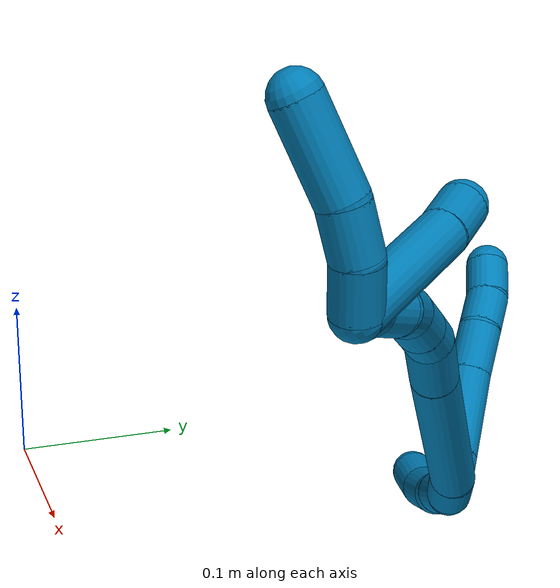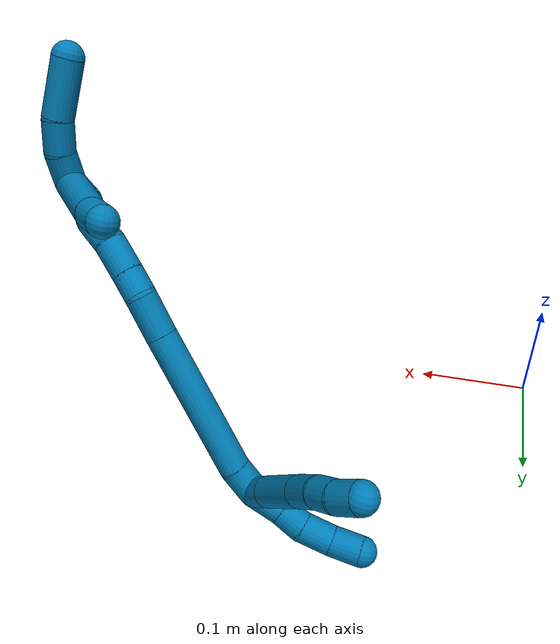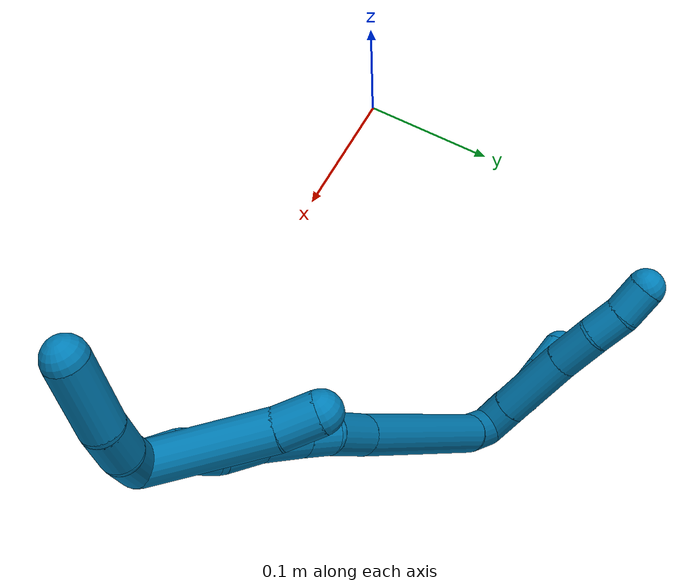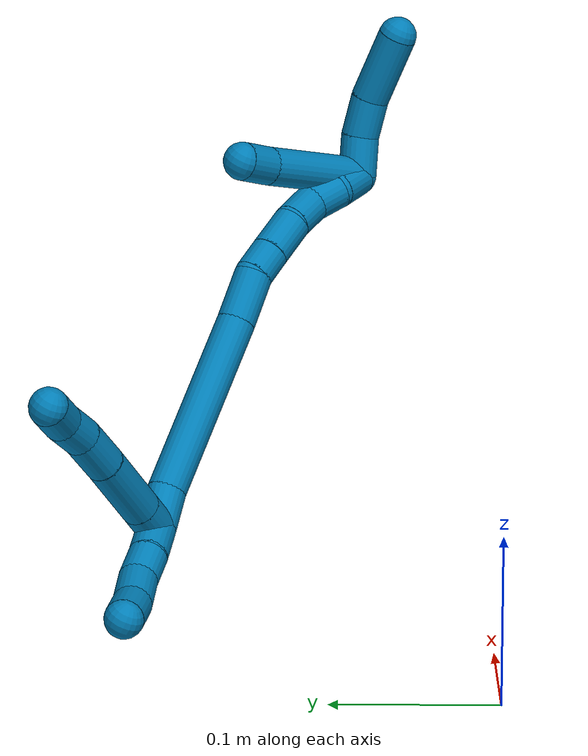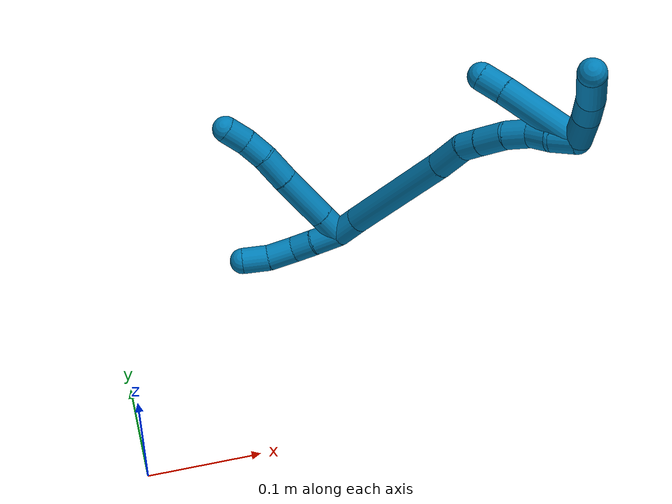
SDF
<sdf version="1.7">
 <world name="default">
  <model name="9">
   <static>0</static>
   <link name="9">
    <collision name="collision-cylinder-e_1_2_8">
     <pose>0.008328 0.005244 0.006988 -0.643769 0.76151 -0.265409</pose>
     <geometry><cylinder><radius>0.0125</radius><length>0.02414</length></cylinder></geometry>
     <surface>
      <friction><ode><mu>1.16</mu><mu2>1.16</mu2><slip1>0</slip1><slip2>0</slip2></ode></friction>
      <contact><ode><kp>1e+06</kp><kd>1</kd><max_vel>0</max_vel><min_depth>0.001</min_depth></ode></contact>
     </surface>
    </collision>
    <visual name="visual-cylinder-e_1_2_8">
     <pose>0.008328 0.005244 0.006988 -0.643769 0.76151 -0.265409</pose>
     <geometry><cylinder><radius>0.0125</radius><length>0.02414</length></cylinder></geometry>
     <material><ambient>0 0.490196 0.709804 1</ambient></material>
    </visual>
    <collision name="collision-cylinder-e_2_8_9">
     <pose>0.034337 0.021526 0.028689 -0.643632 0.76559 -0.266901</pose>
     <geometry><cylinder><radius>0.0125</radius><length>0.051027</length></cylinder></geometry>
     <surface>
      <friction><ode><mu>1.16</mu><mu2>1.16</mu2><slip1>0</slip1><slip2>0</slip2></ode></friction>
      <contact><ode><kp>1e+06</kp><kd>1</kd><max_vel>0</max_vel><min_depth>0.001</min_depth></ode></contact>
     </surface>
    </collision>
    <visual name="visual-cylinder-e_2_8_9">
     <pose>0.034337 0.021526 0.028689 -0.643632 0.76559 -0.266901</pose>
     <geometry><cylinder><radius>0.0125</radius><length>0.051027</length></cylinder></geometry>
     <material><ambient>0 0.490196 0.709804 1</ambient></material>
    </visual>
    <collision name="collision-cylinder-e_3_9_10">
     <pose>0.062795 0.038474 0.051624 -0.623279 0.81666 -0.276959</pose>
     <geometry><cylinder><radius>0.0125</radius><length>0.029576</length></cylinder></geometry>
     <surface>
      <friction><ode><mu>1.16</mu><mu2>1.16</mu2><slip1>0</slip1><slip2>0</slip2></ode></friction>
      <contact><ode><kp>1e+06</kp><kd>1</kd><max_vel>0</max_vel><min_depth>0.001</min_depth></ode></contact>
     </surface>
    </collision>
    <visual name="visual-cylinder-e_3_9_10">
     <pose>0.062795 0.038474 0.051624 -0.623279 0.81666 -0.276959</pose>
     <geometry><cylinder><radius>0.0125</radius><length>0.029576</length></cylinder></geometry>
     <material><ambient>0 0.490196 0.709804 1</ambient></material>
    </visual>
    <collision name="collision-cylinder-e_4_10_11">
     <pose>0.081682 0.050299 0.064866 -0.866982 0.807486 -0.390436</pose>
     <geometry><cylinder><radius>0.0125</radius><length>0.022445</length></cylinder></geometry>
     <surface>
      <friction><ode><mu>1.16</mu><mu2>1.16</mu2><slip1>0</slip1><slip2>0</slip2></ode></friction>
      <contact><ode><kp>1e+06</kp><kd>1</kd><max_vel>0</max_vel><min_depth>0.001</min_depth></ode></contact>
     </surface>
    </collision>
    <visual name="visual-cylinder-e_4_10_11">
     <pose>0.081682 0.050299 0.064866 -0.866982 0.807486 -0.390436</pose>
     <geometry><cylinder><radius>0.0125</radius><length>0.022445</length></cylinder></geometry>
     <material><ambient>0 0.490196 0.709804 1</ambient></material>
    </visual>
    <collision name="collision-cylinder-e_5_11_6">
     <pose>0.096287 0.063298 0.076028 -0.856538 0.605865 -0.283464</pose>
     <geometry><cylinder><radius>0.0125</radius><length>0.022812</length></cylinder></geometry>
     <surface>
      <friction><ode><mu>1.16</mu><mu2>1.16</mu2><slip1>0</slip1><slip2>0</slip2></ode></friction>
      <contact><ode><kp>1e+06</kp><kd>1</kd><max_vel>0</max_vel><min_depth>0.001</min_depth></ode></contact>
     </surface>
    </collision>
    <visual name="visual-cylinder-e_5_11_6">
     <pose>0.096287 0.063298 0.076028 -0.856538 0.605865 -0.283464</pose>
     <geometry><cylinder><radius>0.0125</radius><length>0.022812</length></cylinder></geometry>
     <material><ambient>0 0.490196 0.709804 1</ambient></material>
    </visual>
    <collision name="collision-cylinder-e_1_2_12">
     <pose>0.000801 0.012401 -0.003761 -1.86526 0.061738 -0.083217</pose>
     <geometry><cylinder><radius>0.0125</radius><length>0.025966</length></cylinder></geometry>
     <surface>
      <friction><ode><mu>1.16</mu><mu2>1.16</mu2><slip1>0</slip1><slip2>0</slip2></ode></friction>
      <contact><ode><kp>1e+06</kp><kd>1</kd><max_vel>0</max_vel><min_depth>0.001</min_depth></ode></contact>
     </surface>
    </collision>
    <visual name="visual-cylinder-e_1_2_12">
     <pose>0.000801 0.012401 -0.003761 -1.86526 0.061738 -0.083217</pose>
     <geometry><cylinder><radius>0.0125</radius><length>0.025966</length></cylinder></geometry>
     <material><ambient>0 0.490196 0.709804 1</ambient></material>
    </visual>
    <collision name="collision-cylinder-e_2_12_13">
     <pose>0.00284 0.034675 -0.011713 -1.97219 0.114934 -0.173396</pose>
     <geometry><cylinder><radius>0.0125</radius><length>0.021595</length></cylinder></geometry>
     <surface>
      <friction><ode><mu>1.16</mu><mu2>1.16</mu2><slip1>0</slip1><slip2>0</slip2></ode></friction>
      <contact><ode><kp>1e+06</kp><kd>1</kd><max_vel>0</max_vel><min_depth>0.001</min_depth></ode></contact>
     </surface>
    </collision>
    <visual name="visual-cylinder-e_2_12_13">
     <pose>0.00284 0.034675 -0.011713 -1.97219 0.114934 -0.173396</pose>
     <geometry><cylinder><radius>0.0125</radius><length>0.021595</length></cylinder></geometry>
     <material><ambient>0 0.490196 0.709804 1</ambient></material>
    </visual>
    <collision name="collision-cylinder-e_3_13_14">
     <pose>0.004695 0.057817 -0.017812 -1.71366 0.045926 -0.053002</pose>
     <geometry><cylinder><radius>0.0125</radius><length>0.026837</length></cylinder></geometry>
     <surface>
      <friction><ode><mu>1.16</mu><mu2>1.16</mu2><slip1>0</slip1><slip2>0</slip2></ode></friction>
      <contact><ode><kp>1e+06</kp><kd>1</kd><max_vel>0</max_vel><min_depth>0.001</min_depth></ode></contact>
     </surface>
    </collision>
    <visual name="visual-cylinder-e_3_13_14">
     <pose>0.004695 0.057817 -0.017812 -1.71366 0.045926 -0.053002</pose>
     <geometry><cylinder><radius>0.0125</radius><length>0.026837</length></cylinder></geometry>
     <material><ambient>0 0.490196 0.709804 1</ambient></material>
    </visual>
    <collision name="collision-cylinder-e_4_14_5">
     <pose>0.007726 0.083637 -0.019031 -1.51589 0.189792 -0.179703</pose>
     <geometry><cylinder><radius>0.0125</radius><length>0.025601</length></cylinder></geometry>
     <surface>
      <friction><ode><mu>1.16</mu><mu2>1.16</mu2><slip1>0</slip1><slip2>0</slip2></ode></friction>
      <contact><ode><kp>1e+06</kp><kd>1</kd><max_vel>0</max_vel><min_depth>0.001</min_depth></ode></contact>
     </surface>
    </collision>
    <visual name="visual-cylinder-e_4_14_5">
     <pose>0.007726 0.083637 -0.019031 -1.51589 0.189792 -0.179703</pose>
     <geometry><cylinder><radius>0.0125</radius><length>0.025601</length></cylinder></geometry>
     <material><ambient>0 0.490196 0.709804 1</ambient></material>
    </visual>
    <collision name="collision-cylinder-e_1_2_15">
     <pose>0.000486 -0.010351 0.008369 0.890881 0.036476 0.017417</pose>
     <geometry><cylinder><radius>0.0125</radius><length>0.02664</length></cylinder></geometry>
     <surface>
      <friction><ode><mu>1.16</mu><mu2>1.16</mu2><slip1>0</slip1><slip2>0</slip2></ode></friction>
      <contact><ode><kp>1e+06</kp><kd>1</kd><max_vel>0</max_vel><min_depth>0.001</min_depth></ode></contact>
     </surface>
    </collision>
    <visual name="visual-cylinder-e_1_2_15">
     <pose>0.000486 -0.010351 0.008369 0.890881 0.036476 0.017417</pose>
     <geometry><cylinder><radius>0.0125</radius><length>0.02664</length></cylinder></geometry>
     <material><ambient>0 0.490196 0.709804 1</ambient></material>
    </visual>
    <collision name="collision-cylinder-e_2_15_16">
     <pose>-0.002511 -0.062078 0.061531 0.745772 -0.057051 -0.022323</pose>
     <geometry><cylinder><radius>0.0125</radius><length>0.122156</length></cylinder></geometry>
     <surface>
      <friction><ode><mu>1.16</mu><mu2>1.16</mu2><slip1>0</slip1><slip2>0</slip2></ode></friction>
      <contact><ode><kp>1e+06</kp><kd>1</kd><max_vel>0</max_vel><min_depth>0.001</min_depth></ode></contact>
     </surface>
    </collision>
    <visual name="visual-cylinder-e_2_15_16">
     <pose>-0.002511 -0.062078 0.061531 0.745772 -0.057051 -0.022323</pose>
     <geometry><cylinder><radius>0.0125</radius><length>0.122156</length></cylinder></geometry>
     <material><ambient>0 0.490196 0.709804 1</ambient></material>
    </visual>
    <collision name="collision-cylinder-e_3_16_17">
     <pose>-0.006278 -0.114627 0.119425 0.706072 -0.016517 -0.006086</pose>
     <geometry><cylinder><radius>0.0125</radius><length>0.034441</length></cylinder></geometry>
     <surface>
      <friction><ode><mu>1.16</mu><mu2>1.16</mu2><slip1>0</slip1><slip2>0</slip2></ode></friction>
      <contact><ode><kp>1e+06</kp><kd>1</kd><max_vel>0</max_vel><min_depth>0.001</min_depth></ode></contact>
     </surface>
    </collision>
    <visual name="visual-cylinder-e_3_16_17">
     <pose>-0.006278 -0.114627 0.119425 0.706072 -0.016517 -0.006086</pose>
     <geometry><cylinder><radius>0.0125</radius><length>0.034441</length></cylinder></geometry>
     <material><ambient>0 0.490196 0.709804 1</ambient></material>
    </visual>
    <collision name="collision-cylinder-e_4_17_18">
     <pose>-0.009375 -0.13314 0.138952 0.851809 -0.280631 -0.127982</pose>
     <geometry><cylinder><radius>0.0125</radius><length>0.020306</length></cylinder></geometry>
     <surface>
      <friction><ode><mu>1.16</mu><mu2>1.16</mu2><slip1>0</slip1><slip2>0</slip2></ode></friction>
      <contact><ode><kp>1e+06</kp><kd>1</kd><max_vel>0</max_vel><min_depth>0.001</min_depth></ode></contact>
     </surface>
    </collision>
    <visual name="visual-cylinder-e_4_17_18">
     <pose>-0.009375 -0.13314 0.138952 0.851809 -0.280631 -0.127982</pose>
     <geometry><cylinder><radius>0.0125</radius><length>0.020306</length></cylinder></geometry>
     <material><ambient>0 0.490196 0.709804 1</ambient></material>
    </visual>
    <collision name="collision-cylinder-e_5_18_19">
     <pose>-0.016203 -0.150792 0.153951 0.877184 -0.291013 -0.137259</pose>
     <geometry><cylinder><radius>0.0125</radius><length>0.027997</length></cylinder></geometry>
     <surface>
      <friction><ode><mu>1.16</mu><mu2>1.16</mu2><slip1>0</slip1><slip2>0</slip2></ode></friction>
      <contact><ode><kp>1e+06</kp><kd>1</kd><max_vel>0</max_vel><min_depth>0.001</min_depth></ode></contact>
     </surface>
    </collision>
    <visual name="visual-cylinder-e_5_18_19">
     <pose>-0.016203 -0.150792 0.153951 0.877184 -0.291013 -0.137259</pose>
     <geometry><cylinder><radius>0.0125</radius><length>0.027997</length></cylinder></geometry>
     <material><ambient>0 0.490196 0.709804 1</ambient></material>
    </visual>
    <collision name="collision-cylinder-e_6_19_20">
     <pose>-0.024971 -0.17084 0.167597 1.09042 -0.408418 -0.249913</pose>
     <geometry><cylinder><radius>0.0125</radius><length>0.023925</length></cylinder></geometry>
     <surface>
      <friction><ode><mu>1.16</mu><mu2>1.16</mu2><slip1>0</slip1><slip2>0</slip2></ode></friction>
      <contact><ode><kp>1e+06</kp><kd>1</kd><max_vel>0</max_vel><min_depth>0.001</min_depth></ode></contact>
     </surface>
    </collision>
    <visual name="visual-cylinder-e_6_19_20">
     <pose>-0.024971 -0.17084 0.167597 1.09042 -0.408418 -0.249913</pose>
     <geometry><cylinder><radius>0.0125</radius><length>0.023925</length></cylinder></geometry>
     <material><ambient>0 0.490196 0.709804 1</ambient></material>
    </visual>
    <collision name="collision-cylinder-e_7_20_21">
     <pose>-0.036455 -0.186924 0.178181 0.855886 -0.67532 -0.317606</pose>
     <geometry><cylinder><radius>0.0125</radius><length>0.02154</length></cylinder></geometry>
     <surface>
      <friction><ode><mu>1.16</mu><mu2>1.16</mu2><slip1>0</slip1><slip2>0</slip2></ode></friction>
      <contact><ode><kp>1e+06</kp><kd>1</kd><max_vel>0</max_vel><min_depth>0.001</min_depth></ode></contact>
     </surface>
    </collision>
    <visual name="visual-cylinder-e_7_20_21">
     <pose>-0.036455 -0.186924 0.178181 0.855886 -0.67532 -0.317606</pose>
     <geometry><cylinder><radius>0.0125</radius><length>0.02154</length></cylinder></geometry>
     <material><ambient>0 0.490196 0.709804 1</ambient></material>
    </visual>
    <collision name="collision-cylinder-e_8_21_1">
     <pose>-0.048974 -0.202566 0.187202 1.20975 -0.527359 -0.369018</pose>
     <geometry><cylinder><radius>0.0125</radius><length>0.022995</length></cylinder></geometry>
     <surface>
      <friction><ode><mu>1.16</mu><mu2>1.16</mu2><slip1>0</slip1><slip2>0</slip2></ode></friction>
      <contact><ode><kp>1e+06</kp><kd>1</kd><max_vel>0</max_vel><min_depth>0.001</min_depth></ode></contact>
     </surface>
    </collision>
    <visual name="visual-cylinder-e_8_21_1">
     <pose>-0.048974 -0.202566 0.187202 1.20975 -0.527359 -0.369018</pose>
     <geometry><cylinder><radius>0.0125</radius><length>0.022995</length></cylinder></geometry>
     <material><ambient>0 0.490196 0.709804 1</ambient></material>
    </visual>
    <collision name="collision-cylinder-e_1_1_22">
     <pose>-0.050549 -0.216672 0.202479 0.388099 0.31984 0.063376</pose>
     <geometry><cylinder><radius>0.0125</radius><length>0.026785</length></cylinder></geometry>
     <surface>
      <friction><ode><mu>1.16</mu><mu2>1.16</mu2><slip1>0</slip1><slip2>0</slip2></ode></friction>
      <contact><ode><kp>1e+06</kp><kd>1</kd><max_vel>0</max_vel><min_depth>0.001</min_depth></ode></contact>
     </surface>
    </collision>
    <visual name="visual-cylinder-e_1_1_22">
     <pose>-0.050549 -0.216672 0.202479 0.388099 0.31984 0.063376</pose>
     <geometry><cylinder><radius>0.0125</radius><length>0.026785</length></cylinder></geometry>
     <material><ambient>0 0.490196 0.709804 1</ambient></material>
    </visual>
    <collision name="collision-cylinder-e_2_22_23">
     <pose>-0.044171 -0.223664 0.227014 0.169132 0.165816 0.014088</pose>
     <geometry><cylinder><radius>0.0125</radius><length>0.026264</length></cylinder></geometry>
     <surface>
      <friction><ode><mu>1.16</mu><mu2>1.16</mu2><slip1>0</slip1><slip2>0</slip2></ode></friction>
      <contact><ode><kp>1e+06</kp><kd>1</kd><max_vel>0</max_vel><min_depth>0.001</min_depth></ode></contact>
     </surface>
    </collision>
    <visual name="visual-cylinder-e_2_22_23">
     <pose>-0.044171 -0.223664 0.227014 0.169132 0.165816 0.014088</pose>
     <geometry><cylinder><radius>0.0125</radius><length>0.026264</length></cylinder></geometry>
     <material><ambient>0 0.490196 0.709804 1</ambient></material>
    </visual>
    <collision name="collision-cylinder-e_3_23_4">
     <pose>-0.041144 -0.225375 0.263236 -0.019971 0.036592 -0.000365</pose>
     <geometry><cylinder><radius>0.0125</radius><length>0.046951</length></cylinder></geometry>
     <surface>
      <friction><ode><mu>1.16</mu><mu2>1.16</mu2><slip1>0</slip1><slip2>0</slip2></ode></friction>
      <contact><ode><kp>1e+06</kp><kd>1</kd><max_vel>0</max_vel><min_depth>0.001</min_depth></ode></contact>
     </surface>
    </collision>
    <visual name="visual-cylinder-e_3_23_4">
     <pose>-0.041144 -0.225375 0.263236 -0.019971 0.036592 -0.000365</pose>
     <geometry><cylinder><radius>0.0125</radius><length>0.046951</length></cylinder></geometry>
     <material><ambient>0 0.490196 0.709804 1</ambient></material>
    </visual>
    <collision name="collision-cylinder-e_1_1_24">
     <pose>-0.023132 -0.19077 0.189904 -1.60905 0.982318 -1.01448</pose>
     <geometry><cylinder><radius>0.0125</radius><length>0.076048</length></cylinder></geometry>
     <surface>
      <friction><ode><mu>1.16</mu><mu2>1.16</mu2><slip1>0</slip1><slip2>0</slip2></ode></friction>
      <contact><ode><kp>1e+06</kp><kd>1</kd><max_vel>0</max_vel><min_depth>0.001</min_depth></ode></contact>
     </surface>
    </collision>
    <visual name="visual-cylinder-e_1_1_24">
     <pose>-0.023132 -0.19077 0.189904 -1.60905 0.982318 -1.01448</pose>
     <geometry><cylinder><radius>0.0125</radius><length>0.076048</length></cylinder></geometry>
     <material><ambient>0 0.490196 0.709804 1</ambient></material>
    </visual>
    <collision name="collision-cylinder-e_2_24_3">
     <pose>0.017864 -0.162273 0.189998 -1.44966 0.898304 -0.806944</pose>
     <geometry><cylinder><radius>0.0125</radius><length>0.023952</length></cylinder></geometry>
     <surface>
      <friction><ode><mu>1.16</mu><mu2>1.16</mu2><slip1>0</slip1><slip2>0</slip2></ode></friction>
      <contact><ode><kp>1e+06</kp><kd>1</kd><max_vel>0</max_vel><min_depth>0.001</min_depth></ode></contact>
     </surface>
    </collision>
    <visual name="visual-cylinder-e_2_24_3">
     <pose>0.017864 -0.162273 0.189998 -1.44966 0.898304 -0.806944</pose>
     <geometry><cylinder><radius>0.0125</radius><length>0.023952</length></cylinder></geometry>
     <material><ambient>0 0.490196 0.709804 1</ambient></material>
    </visual>
    <collision name="collision-sphere-3">
     <pose>0.027233 -0.154867 0.1909 0 -0 0</pose>
     <geometry><sphere><radius>0.0125</radius></sphere></geometry>
     <surface>
      <friction><ode><mu>1.16</mu><mu2>1.16</mu2><slip1>0</slip1><slip2>0</slip2></ode></friction>
      <contact><ode><kp>1e+06</kp><kd>1</kd><max_vel>0</max_vel><min_depth>0.001</min_depth></ode></contact>
     </surface>
    </collision>
    <visual name="visual-sphere-3">
     <pose>0.027233 -0.154867 0.1909 0 -0 0</pose>
     <geometry><sphere><radius>0.0125</radius></sphere></geometry>
     <material><ambient>0 0.490196 0.709804 1</ambient></material>
    </visual>
    <collision name="collision-sphere-24">
     <pose>0.008496 -0.169678 0.189097 0 -0 0</pose>
     <geometry><sphere><radius>0.0125</radius></sphere></geometry>
     <surface>
      <friction><ode><mu>1.16</mu><mu2>1.16</mu2><slip1>0</slip1><slip2>0</slip2></ode></friction>
      <contact><ode><kp>1e+06</kp><kd>1</kd><max_vel>0</max_vel><min_depth>0.001</min_depth></ode></contact>
     </surface>
    </collision>
    <visual name="visual-sphere-24">
     <pose>0.008496 -0.169678 0.189097 0 -0 0</pose>
     <geometry><sphere><radius>0.0125</radius></sphere></geometry>
     <material><ambient>0 0.490196 0.709804 1</ambient></material>
    </visual>
    <collision name="collision-sphere-4">
     <pose>-0.040285 -0.224907 0.286691 0 -0 0</pose>
     <geometry><sphere><radius>0.0125</radius></sphere></geometry>
     <surface>
      <friction><ode><mu>1.16</mu><mu2>1.16</mu2><slip1>0</slip1><slip2>0</slip2></ode></friction>
      <contact><ode><kp>1e+06</kp><kd>1</kd><max_vel>0</max_vel><min_depth>0.001</min_depth></ode></contact>
     </surface>
    </collision>
    <visual name="visual-sphere-4">
     <pose>-0.040285 -0.224907 0.286691 0 -0 0</pose>
     <geometry><sphere><radius>0.0125</radius></sphere></geometry>
     <material><ambient>0 0.490196 0.709804 1</ambient></material>
    </visual>
    <collision name="collision-sphere-23">
     <pose>-0.042003 -0.225844 0.239782 0 -0 0</pose>
     <geometry><sphere><radius>0.0125</radius></sphere></geometry>
     <surface>
      <friction><ode><mu>1.16</mu><mu2>1.16</mu2><slip1>0</slip1><slip2>0</slip2></ode></friction>
      <contact><ode><kp>1e+06</kp><kd>1</kd><max_vel>0</max_vel><min_depth>0.001</min_depth></ode></contact>
     </surface>
    </collision>
    <visual name="visual-sphere-23">
     <pose>-0.042003 -0.225844 0.239782 0 -0 0</pose>
     <geometry><sphere><radius>0.0125</radius></sphere></geometry>
     <material><ambient>0 0.490196 0.709804 1</ambient></material>
    </visual>
    <collision name="collision-sphere-22">
     <pose>-0.046338 -0.221483 0.214247 0 -0 0</pose>
     <geometry><sphere><radius>0.0125</radius></sphere></geometry>
     <surface>
      <friction><ode><mu>1.16</mu><mu2>1.16</mu2><slip1>0</slip1><slip2>0</slip2></ode></friction>
      <contact><ode><kp>1e+06</kp><kd>1</kd><max_vel>0</max_vel><min_depth>0.001</min_depth></ode></contact>
     </surface>
    </collision>
    <visual name="visual-sphere-22">
     <pose>-0.046338 -0.221483 0.214247 0 -0 0</pose>
     <geometry><sphere><radius>0.0125</radius></sphere></geometry>
     <material><ambient>0 0.490196 0.709804 1</ambient></material>
    </visual>
    <collision name="collision-sphere-1">
     <pose>-0.05476 -0.211861 0.190711 0 -0 0</pose>
     <geometry><sphere><radius>0.0125</radius></sphere></geometry>
     <surface>
      <friction><ode><mu>1.16</mu><mu2>1.16</mu2><slip1>0</slip1><slip2>0</slip2></ode></friction>
      <contact><ode><kp>1e+06</kp><kd>1</kd><max_vel>0</max_vel><min_depth>0.001</min_depth></ode></contact>
     </surface>
    </collision>
    <visual name="visual-sphere-1">
     <pose>-0.05476 -0.211861 0.190711 0 -0 0</pose>
     <geometry><sphere><radius>0.0125</radius></sphere></geometry>
     <material><ambient>0 0.490196 0.709804 1</ambient></material>
    </visual>
    <collision name="collision-sphere-21">
     <pose>-0.043187 -0.193272 0.183692 0 -0 0</pose>
     <geometry><sphere><radius>0.0125</radius></sphere></geometry>
     <surface>
      <friction><ode><mu>1.16</mu><mu2>1.16</mu2><slip1>0</slip1><slip2>0</slip2></ode></friction>
      <contact><ode><kp>1e+06</kp><kd>1</kd><max_vel>0</max_vel><min_depth>0.001</min_depth></ode></contact>
     </surface>
    </collision>
    <visual name="visual-sphere-21">
     <pose>-0.043187 -0.193272 0.183692 0 -0 0</pose>
     <geometry><sphere><radius>0.0125</radius></sphere></geometry>
     <material><ambient>0 0.490196 0.709804 1</ambient></material>
    </visual>
    <collision name="collision-sphere-6">
     <pose>0.102782 0.070382 0.08217 0 -0 0</pose>
     <geometry><sphere><radius>0.0125</radius></sphere></geometry>
     <surface>
      <friction><ode><mu>1.16</mu><mu2>1.16</mu2><slip1>0</slip1><slip2>0</slip2></ode></friction>
      <contact><ode><kp>1e+06</kp><kd>1</kd><max_vel>0</max_vel><min_depth>0.001</min_depth></ode></contact>
     </surface>
    </collision>
    <visual name="visual-sphere-6">
     <pose>0.102782 0.070382 0.08217 0 -0 0</pose>
     <geometry><sphere><radius>0.0125</radius></sphere></geometry>
     <material><ambient>0 0.490196 0.709804 1</ambient></material>
    </visual>
    <collision name="collision-sphere-11">
     <pose>0.089791 0.056214 0.069887 0 -0 0</pose>
     <geometry><sphere><radius>0.0125</radius></sphere></geometry>
     <surface>
      <friction><ode><mu>1.16</mu><mu2>1.16</mu2><slip1>0</slip1><slip2>0</slip2></ode></friction>
      <contact><ode><kp>1e+06</kp><kd>1</kd><max_vel>0</max_vel><min_depth>0.001</min_depth></ode></contact>
     </surface>
    </collision>
    <visual name="visual-sphere-11">
     <pose>0.089791 0.056214 0.069887 0 -0 0</pose>
     <geometry><sphere><radius>0.0125</radius></sphere></geometry>
     <material><ambient>0 0.490196 0.709804 1</ambient></material>
    </visual>
    <collision name="collision-sphere-10">
     <pose>0.073573 0.044384 0.059845 0 -0 0</pose>
     <geometry><sphere><radius>0.0125</radius></sphere></geometry>
     <surface>
      <friction><ode><mu>1.16</mu><mu2>1.16</mu2><slip1>0</slip1><slip2>0</slip2></ode></friction>
      <contact><ode><kp>1e+06</kp><kd>1</kd><max_vel>0</max_vel><min_depth>0.001</min_depth></ode></contact>
     </surface>
    </collision>
    <visual name="visual-sphere-10">
     <pose>0.073573 0.044384 0.059845 0 -0 0</pose>
     <geometry><sphere><radius>0.0125</radius></sphere></geometry>
     <material><ambient>0 0.490196 0.709804 1</ambient></material>
    </visual>
    <collision name="collision-sphere-9">
     <pose>0.052017 0.032564 0.043403 0 -0 0</pose>
     <geometry><sphere><radius>0.0125</radius></sphere></geometry>
     <surface>
      <friction><ode><mu>1.16</mu><mu2>1.16</mu2><slip1>0</slip1><slip2>0</slip2></ode></friction>
      <contact><ode><kp>1e+06</kp><kd>1</kd><max_vel>0</max_vel><min_depth>0.001</min_depth></ode></contact>
     </surface>
    </collision>
    <visual name="visual-sphere-9">
     <pose>0.052017 0.032564 0.043403 0 -0 0</pose>
     <geometry><sphere><radius>0.0125</radius></sphere></geometry>
     <material><ambient>0 0.490196 0.709804 1</ambient></material>
    </visual>
    <collision name="collision-sphere-2">
     <geometry><sphere><radius>0.0125</radius></sphere></geometry>
     <surface>
      <friction><ode><mu>1.16</mu><mu2>1.16</mu2><slip1>0</slip1><slip2>0</slip2></ode></friction>
      <contact><ode><kp>1e+06</kp><kd>1</kd><max_vel>0</max_vel><min_depth>0.001</min_depth></ode></contact>
     </surface>
    </collision>
    <visual name="visual-sphere-2">
     <geometry><sphere><radius>0.0125</radius></sphere></geometry>
     <material><ambient>0 0.490196 0.709804 1</ambient></material>
    </visual>
    <collision name="collision-sphere-19">
     <pose>-0.02022 -0.161104 0.162524 0 -0 0</pose>
     <geometry><sphere><radius>0.0125</radius></sphere></geometry>
     <surface>
      <friction><ode><mu>1.16</mu><mu2>1.16</mu2><slip1>0</slip1><slip2>0</slip2></ode></friction>
      <contact><ode><kp>1e+06</kp><kd>1</kd><max_vel>0</max_vel><min_depth>0.001</min_depth></ode></contact>
     </surface>
    </collision>
    <visual name="visual-sphere-19">
     <pose>-0.02022 -0.161104 0.162524 0 -0 0</pose>
     <geometry><sphere><radius>0.0125</radius></sphere></geometry>
     <material><ambient>0 0.490196 0.709804 1</ambient></material>
    </visual>
    <collision name="collision-sphere-8">
     <pose>0.016657 0.010487 0.013975 0 -0 0</pose>
     <geometry><sphere><radius>0.0125</radius></sphere></geometry>
     <surface>
      <friction><ode><mu>1.16</mu><mu2>1.16</mu2><slip1>0</slip1><slip2>0</slip2></ode></friction>
      <contact><ode><kp>1e+06</kp><kd>1</kd><max_vel>0</max_vel><min_depth>0.001</min_depth></ode></contact>
     </surface>
    </collision>
    <visual name="visual-sphere-8">
     <pose>0.016657 0.010487 0.013975 0 -0 0</pose>
     <geometry><sphere><radius>0.0125</radius></sphere></geometry>
     <material><ambient>0 0.490196 0.709804 1</ambient></material>
    </visual>
    <collision name="collision-sphere-12">
     <pose>0.001602 0.024801 -0.007522 0 -0 0</pose>
     <geometry><sphere><radius>0.0125</radius></sphere></geometry>
     <surface>
      <friction><ode><mu>1.16</mu><mu2>1.16</mu2><slip1>0</slip1><slip2>0</slip2></ode></friction>
      <contact><ode><kp>1e+06</kp><kd>1</kd><max_vel>0</max_vel><min_depth>0.001</min_depth></ode></contact>
     </surface>
    </collision>
    <visual name="visual-sphere-12">
     <pose>0.001602 0.024801 -0.007522 0 -0 0</pose>
     <geometry><sphere><radius>0.0125</radius></sphere></geometry>
     <material><ambient>0 0.490196 0.709804 1</ambient></material>
    </visual>
    <collision name="collision-sphere-13">
     <pose>0.004079 0.044549 -0.015903 0 -0 0</pose>
     <geometry><sphere><radius>0.0125</radius></sphere></geometry>
     <surface>
      <friction><ode><mu>1.16</mu><mu2>1.16</mu2><slip1>0</slip1><slip2>0</slip2></ode></friction>
      <contact><ode><kp>1e+06</kp><kd>1</kd><max_vel>0</max_vel><min_depth>0.001</min_depth></ode></contact>
     </surface>
    </collision>
    <visual name="visual-sphere-13">
     <pose>0.004079 0.044549 -0.015903 0 -0 0</pose>
     <geometry><sphere><radius>0.0125</radius></sphere></geometry>
     <material><ambient>0 0.490196 0.709804 1</ambient></material>
    </visual>
    <collision name="collision-sphere-14">
     <pose>0.005311 0.071085 -0.019721 0 -0 0</pose>
     <geometry><sphere><radius>0.0125</radius></sphere></geometry>
     <surface>
      <friction><ode><mu>1.16</mu><mu2>1.16</mu2><slip1>0</slip1><slip2>0</slip2></ode></friction>
      <contact><ode><kp>1e+06</kp><kd>1</kd><max_vel>0</max_vel><min_depth>0.001</min_depth></ode></contact>
     </surface>
    </collision>
    <visual name="visual-sphere-14">
     <pose>0.005311 0.071085 -0.019721 0 -0 0</pose>
     <geometry><sphere><radius>0.0125</radius></sphere></geometry>
     <material><ambient>0 0.490196 0.709804 1</ambient></material>
    </visual>
    <collision name="collision-sphere-5">
     <pose>0.010141 0.096188 -0.018341 0 -0 0</pose>
     <geometry><sphere><radius>0.0125</radius></sphere></geometry>
     <surface>
      <friction><ode><mu>1.16</mu><mu2>1.16</mu2><slip1>0</slip1><slip2>0</slip2></ode></friction>
      <contact><ode><kp>1e+06</kp><kd>1</kd><max_vel>0</max_vel><min_depth>0.001</min_depth></ode></contact>
     </surface>
    </collision>
    <visual name="visual-sphere-5">
     <pose>0.010141 0.096188 -0.018341 0 -0 0</pose>
     <geometry><sphere><radius>0.0125</radius></sphere></geometry>
     <material><ambient>0 0.490196 0.709804 1</ambient></material>
    </visual>
    <collision name="collision-sphere-15">
     <pose>0.000971 -0.020702 0.016738 0 -0 0</pose>
     <geometry><sphere><radius>0.0125</radius></sphere></geometry>
     <surface>
      <friction><ode><mu>1.16</mu><mu2>1.16</mu2><slip1>0</slip1><slip2>0</slip2></ode></friction>
      <contact><ode><kp>1e+06</kp><kd>1</kd><max_vel>0</max_vel><min_depth>0.001</min_depth></ode></contact>
     </surface>
    </collision>
    <visual name="visual-sphere-15">
     <pose>0.000971 -0.020702 0.016738 0 -0 0</pose>
     <geometry><sphere><radius>0.0125</radius></sphere></geometry>
     <material><ambient>0 0.490196 0.709804 1</ambient></material>
    </visual>
    <collision name="collision-sphere-16">
     <pose>-0.005994 -0.103455 0.106324 0 -0 0</pose>
     <geometry><sphere><radius>0.0125</radius></sphere></geometry>
     <surface>
      <friction><ode><mu>1.16</mu><mu2>1.16</mu2><slip1>0</slip1><slip2>0</slip2></ode></friction>
      <contact><ode><kp>1e+06</kp><kd>1</kd><max_vel>0</max_vel><min_depth>0.001</min_depth></ode></contact>
     </surface>
    </collision>
    <visual name="visual-sphere-16">
     <pose>-0.005994 -0.103455 0.106324 0 -0 0</pose>
     <geometry><sphere><radius>0.0125</radius></sphere></geometry>
     <material><ambient>0 0.490196 0.709804 1</ambient></material>
    </visual>
    <collision name="collision-sphere-17">
     <pose>-0.006563 -0.125799 0.132527 0 -0 0</pose>
     <geometry><sphere><radius>0.0125</radius></sphere></geometry>
     <surface>
      <friction><ode><mu>1.16</mu><mu2>1.16</mu2><slip1>0</slip1><slip2>0</slip2></ode></friction>
      <contact><ode><kp>1e+06</kp><kd>1</kd><max_vel>0</max_vel><min_depth>0.001</min_depth></ode></contact>
     </surface>
    </collision>
    <visual name="visual-sphere-17">
     <pose>-0.006563 -0.125799 0.132527 0 -0 0</pose>
     <geometry><sphere><radius>0.0125</radius></sphere></geometry>
     <material><ambient>0 0.490196 0.709804 1</ambient></material>
    </visual>
    <collision name="collision-sphere-18">
     <pose>-0.012187 -0.140481 0.145378 0 -0 0</pose>
     <geometry><sphere><radius>0.0125</radius></sphere></geometry>
     <surface>
      <friction><ode><mu>1.16</mu><mu2>1.16</mu2><slip1>0</slip1><slip2>0</slip2></ode></friction>
      <contact><ode><kp>1e+06</kp><kd>1</kd><max_vel>0</max_vel><min_depth>0.001</min_depth></ode></contact>
     </surface>
    </collision>
    <visual name="visual-sphere-18">
     <pose>-0.012187 -0.140481 0.145378 0 -0 0</pose>
     <geometry><sphere><radius>0.0125</radius></sphere></geometry>
     <material><ambient>0 0.490196 0.709804 1</ambient></material>
    </visual>
    <collision name="collision-sphere-20">
     <pose>-0.029722 -0.180576 0.172671 0 -0 0</pose>
     <geometry><sphere><radius>0.0125</radius></sphere></geometry>
     <surface>
      <friction><ode><mu>1.16</mu><mu2>1.16</mu2><slip1>0</slip1><slip2>0</slip2></ode></friction>
      <contact><ode><kp>1e+06</kp><kd>1</kd><max_vel>0</max_vel><min_depth>0.001</min_depth></ode></contact>
     </surface>
    </collision>
    <visual name="visual-sphere-20">
     <pose>-0.029722 -0.180576 0.172671 0 -0 0</pose>
     <geometry><sphere><radius>0.0125</radius></sphere></geometry>
     <material><ambient>0 0.490196 0.709804 1</ambient></material>
    </visual>
    <inertial>
     <pose>-0.001592 -0.083278 0.105211 0 -0 0</pose>
     <mass>0.75</mass>
     <inertia>
      <ixx>0.000207</ixx>
      <ixy>0</ixy>
      <ixz>0</ixz>
      <iyy>0.000158</iyy>
      <iyz>0</iyz>
      <izz>6.6e-05</izz>
     </inertia>
    </inertial>
   </link>
   <pose>0.220943 0.206583 0.043899 -0.220793 -0.407746 1.66274</pose>
  </model>
 </world>
</sdf>
